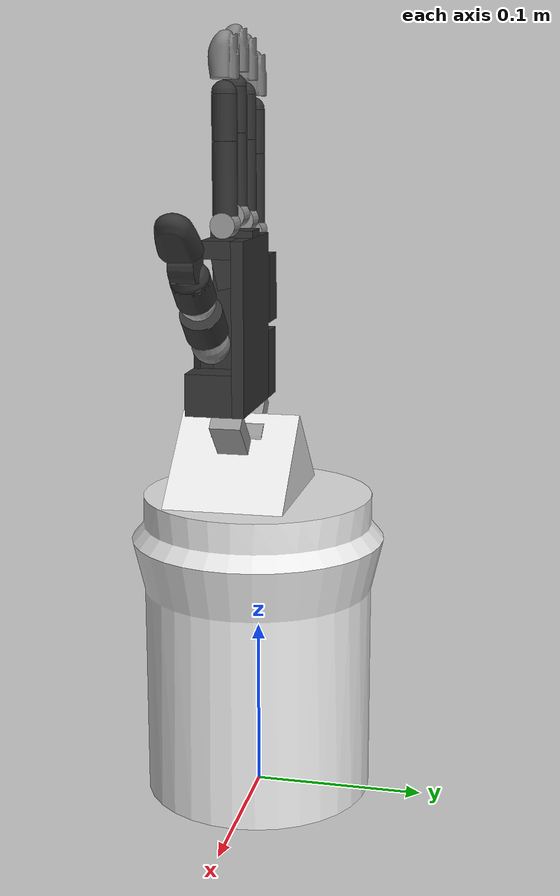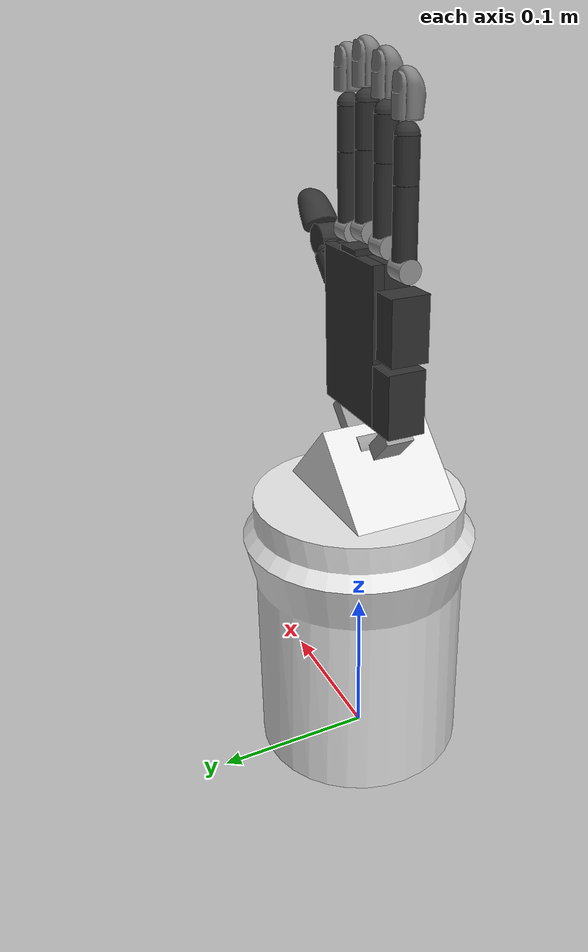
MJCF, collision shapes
<mujoco model="shadowhand_motor">
  <compiler angle="radian" meshdir="assets_sh_stl/"/>

  <option cone="elliptic" impratio="10"/>

  <default>
    <default class="right_hand">
      <mesh scale="0.001 0.001 0.001"/>
      <joint axis="1 0 0" damping="0.05" armature="0.0002" frictionloss="0.01"/>
      <position forcerange="-1 1"/>

      <default class="wrist">
        <joint damping="0.5"/>
        <default class="wrist_y">
          <!-- updated values from https://shadow-robot-company-dexterous-hand.readthedocs-hosted.com/en/latest/user_guide/md_ranges.html -->
          <joint axis="0 1 0" range="-0.489 0.174" />
          <position kp="10" ctrlrange="-0.523599 0.174533" forcerange="-10 10"/>
        </default>
        <default class="wrist_x">
          <joint range="-0.698132 0.488692"/>
          <position kp="8" ctrlrange="-0.698132 0.488692" forcerange="-5 5"/>
        </default>
      </default>

      <default class="thumb">
        <default class="thbase">
          <joint axis="0 0 -1" range="-1.0472 1.0472"/>
          <position kp="0.4" ctrlrange="-1.0472 1.0472" forcerange="-3 3"/>
        </default>
        <default class="thproximal">
          <joint range="0 1.22173"/>
          <position ctrlrange="0 1.22173" forcerange="-2 2"/>
        </default>
        <default class="thhub">
          <joint range="-0.20944 0.20944"/>
          <position kp="0.5" ctrlrange="-0.20944 0.20944"/>
        </default>
        <default class="thmiddle">
          <joint axis="0 -1 0" range="-0.698132 0.698132"/>
          <position kp="1.5" ctrlrange="-0.698132 0.698132"/>
        </default>
        <default class="thdistal">
          <joint range="-0.261799 1.5708"/>
          <position ctrlrange="-0.261799 1.5708"/>
        </default>
      </default>

      <default class="metacarpal">
        <joint axis="0.573576 0 0.819152" range="0 0.785398"/>
        <position ctrlrange="0 0.785398"/>
      </default>
      <default class="knuckle">
        <joint axis="0 -1 0" range="-0.349066 0.349066"/>
        <position ctrlrange="-0.349066 0.349066"/>
      </default>
      <default class="proximal">
        <joint range="-0.261799 1.5708"/>
        <position ctrlrange="-0.261799 1.5708"/>
      </default>
      <default class="middle_distal">
        <joint range="0 1.5708"/>
        <position kp="0.5" ctrlrange="0 3.1415"/>
      </default>

      <default class="plastic">
        <geom solimp="0.5 0.99 0.0001" solref="0.005 1"/>
        <default class="plastic_visual">
          <geom type="mesh" material="black" contype="0" conaffinity="0" group="2"/>
        </default>
        <default class="plastic_collision">
          <geom group="3"/>
        </default>
      </default>
    </default>
  </default>

  <asset>
    <mesh name="forearm_E3M5" file="forearm_E3M5.stl" scale="0.001 0.001 0.001"/>
    <mesh name="forearm_collision_E3M5" file="forearm_collision_E3M5.stl" scale="0.001 0.001 0.001"/>
    <mesh name="wrist_E3M5" file="wrist_E3M5.stl" scale="0.001 0.001 0.001"/>
    <mesh name="palm_E3M5" file="palm_E3M5.stl" scale="0.001 0.001 0.001"/>
    <mesh name="f_knuckle_E3M5" file="f_knuckle_E3M5.stl" scale="0.001 0.001 0.001"/>
    <mesh name="f_proximal_E3M5" file="f_proximal_E3M5.stl" scale="0.001 0.001 0.001"/>
    <mesh name="f_middle_E3M5" file="f_middle_E3M5.stl" scale="0.001 0.001 0.001"/>
    <mesh name="f_distal_mstXL" file="f_distal_mstXL.stl" scale="0.001 0.001 0.001"/>
    <mesh name="lf_metacarpal_E3M5" file="lf_metacarpal_E3M5.stl" scale="0.001 0.001 0.001"/>
    <mesh name="th_proximal_E3M5" file="th_proximal_E3M5.stl" scale="0.001 0.001 0.001"/>
    <mesh name="th_middle_E3M5" file="th_middle_E3M5.stl" scale="0.001 0.001 0.001"/>
    <mesh name="th_distal_mst" file="th_distal_mst.stl" scale="0.001 0.001 0.001"/>
  </asset>

  <worldbody>
    <geom type="mesh" contype="0" conaffinity="0" group="1" density="0" rgba="0.9 0.9 0.9 1" mesh="forearm_E3M5"/>
    <geom type="mesh" rgba="0.9 0.9 0.9 1" mesh="forearm_collision_E3M5"/>
    <geom size="0.035 0.035 0.035" pos="0 -0.01 0.181" quat="0.924909 0 0.380188 0" type="box" rgba="0.9 0.9 0.9 1"/>
    <body name="rh_wrist" pos="0 -0.01 0.21301">
      <inertial pos="0 0 0.029" quat="0.5 0.5 0.5 0.5" mass="0.1" diaginertia="6.4e-05 4.38e-05 3.5e-05"/>
      <joint name="rh_WRJ2" pos="0 0 0" axis="0 1 0" range="-0.523599 0.174533" actuatorfrcrange="-10 10" damping="0.1"/>
      <geom type="mesh" contype="0" conaffinity="0" group="1" density="0" rgba="0.6 0.6 0.6 1" mesh="wrist_E3M5"/>
      <geom size="0.0135 0.015" quat="0.499998 0.5 0.5 -0.500002" type="cylinder" rgba="0.6 0.6 0.6 1"/>
      <geom size="0.011 0.005" pos="-0.026 0 0.034" quat="0.707105 0 0.707108 0" type="cylinder" rgba="0.6 0.6 0.6 1"/>
      <geom size="0.011 0.005" pos="0.031 0 0.034" quat="0.707105 0 0.707108 0" type="cylinder" rgba="0.6 0.6 0.6 1"/>
      <geom size="0.0135 0.009 0.005" pos="-0.021 0 0.011" quat="0.923879 0 0.382684 0" type="box" rgba="0.6 0.6 0.6 1"/>
      <geom size="0.0135 0.009 0.005" pos="0.026 0 0.01" quat="0.923879 0 -0.382684 0" type="box" rgba="0.6 0.6 0.6 1"/>
      <body name="rh_palm" pos="0 0 0.034">
        <inertial pos="0 0 0.035" quat="0.707107 0 0 0.707107" mass="0.3" diaginertia="0.0005287 0.0003581 0.000191"/>
        <joint name="rh_WRJ1" pos="0 0 0" axis="1 0 0" range="-0.698132 0.488692" actuatorfrcrange="-30 30" damping="0.1"/>
        <geom type="mesh" contype="0" conaffinity="0" group="1" density="0" rgba="0.2 0.2 0.2 1" mesh="palm_E3M5"/>
        <geom size="0.031 0.0035 0.049" pos="0.011 0.0085 0.038" type="box" rgba="0.2 0.2 0.2 1"/>
        <geom size="0.018 0.0085 0.049" pos="-0.002 -0.0035 0.038" type="box" rgba="0.2 0.2 0.2 1"/>
        <geom size="0.013 0.0085 0.005" pos="0.029 -0.0035 0.082" type="box" rgba="0.2 0.2 0.2 1"/>
        <geom size="0.013 0.007 0.009" pos="0.0265 -0.001 0.07" quat="0.987241 0.0990545 0.0124467 0.124052" type="box" rgba="0.2 0.2 0.2 1"/>
        <geom size="0.0105 0.0135 0.012" pos="0.0315 -0.0085 0.001" type="box" rgba="0.2 0.2 0.2 1"/>
        <geom size="0.011 0.0025 0.02" pos="0.0125 -0.015 0.009" quat="0.971338 0 0 -0.237703" type="box" rgba="0.2 0.2 0.2 1"/>
        <geom size="0.009 0.012 0.002" pos="0.011 0 0.089" type="box" rgba="0.2 0.2 0.2 1"/>
        <geom size="0.01 0.012 0.02" pos="-0.03 0 0.009" type="box" rgba="0.2 0.2 0.2 1"/>
        <body name="rh_ffknuckle" pos="0.033 0 0.095">
          <inertial pos="0 0 0" quat="0.5 0.5 -0.5 0.5" mass="0.008" diaginertia="3.2e-07 2.6e-07 2.6e-07"/>
          <joint name="rh_FFJ4" pos="0 0 0" axis="0 -1 0" range="-0.349066 0.349066" actuatorfrcrange="-2 2" damping="0.1"/>
          <geom pos="0 0 0.0005" quat="1 0 0 0" type="mesh" contype="0" conaffinity="0" group="1" density="0" rgba="0.6 0.6 0.6 1" mesh="f_knuckle_E3M5"/>
          <geom size="0.007 0.007" quat="0.707105 0 0.707108 0" type="cylinder" rgba="0.6 0.6 0.6 1"/>
          <body name="rh_ffproximal">
            <inertial pos="0 0 0.0225" quat="0.707107 0 0 0.707107" mass="0.03" diaginertia="1e-05 9.8e-06 1.8e-06"/>
            <joint name="rh_FFJ3" pos="0 0 0" axis="1 0 0" range="-0.261799 1.5708" actuatorfrcrange="-2 2" damping="0.1"/>
            <geom type="mesh" contype="0" conaffinity="0" group="1" density="0" rgba="0.2 0.2 0.2 1" mesh="f_proximal_E3M5"/>
            <geom size="0.007 0.02" pos="0 0 0.025" type="cylinder" rgba="0.2 0.2 0.2 1"/>
            <body name="rh_ffmiddle" pos="0 0 0.045">
              <inertial pos="0 0 0.0125" quat="0.707107 0 0 0.707107" mass="0.017" diaginertia="2.7e-06 2.6e-06 8.7e-07"/>
              <joint name="rh_FFJ2" pos="0 0 0" axis="1 0 0" range="0 1.5708" actuatorfrcrange="-2 2" damping="0.1"/>
              <geom type="mesh" contype="0" conaffinity="0" group="1" density="0" rgba="0.2 0.2 0.2 1" mesh="f_middle_E3M5"/>
              <geom size="0.007 0.0125" pos="0 0 0.0125" type="cylinder" rgba="0.2 0.2 0.2 1"/>
              <geom size="0.007" rgba="0.2 0.2 0.2 1"/>
              <geom size="0.007" pos="0 0 0.025" rgba="0.2 0.2 0.2 1"/>
              <body name="rh_ffdistal" pos="0 0 0.025">
                <inertial pos="0 0 0.0130769" quat="0.707107 0 0 0.707107" mass="0.013" diaginertia="1.28092e-06 1.12092e-06 5.3e-07"/>
                <joint name="rh_FFJ1" pos="0 0 0" axis="1 0 0" range="0 1.5708" actuatorfrcrange="-2 2" damping="0.1"/>
                <geom type="mesh" contype="0" conaffinity="0" group="1" density="0" mesh="f_distal_mstXL"/>
                <geom type="mesh" mesh="f_distal_mstXL"/>
              </body>
            </body>
          </body>
        </body>
        <body name="rh_mfknuckle" pos="0.011 0 0.099">
          <inertial pos="0 0 0" quat="0.5 0.5 -0.5 0.5" mass="0.008" diaginertia="3.2e-07 2.6e-07 2.6e-07"/>
          <joint name="rh_MFJ4" pos="0 0 0" axis="0 -1 0" range="-0.349066 0.349066" actuatorfrcrange="-2 2" damping="0.1"/>
          <geom pos="0 0 0.0005" quat="1 0 0 0" type="mesh" contype="0" conaffinity="0" group="1" density="0" rgba="0.6 0.6 0.6 1" mesh="f_knuckle_E3M5"/>
          <geom size="0.007 0.007" quat="0.707105 0 0.707108 0" type="cylinder" rgba="0.6 0.6 0.6 1"/>
          <body name="rh_mfproximal">
            <inertial pos="0 0 0.0225" quat="0.707107 0 0 0.707107" mass="0.03" diaginertia="1e-05 9.8e-06 1.8e-06"/>
            <joint name="rh_MFJ3" pos="0 0 0" axis="1 0 0" range="-0.261799 1.5708" actuatorfrcrange="-2 2" damping="0.1"/>
            <geom type="mesh" contype="0" conaffinity="0" group="1" density="0" rgba="0.2 0.2 0.2 1" mesh="f_proximal_E3M5"/>
            <geom size="0.007 0.02" pos="0 0 0.025" type="cylinder" rgba="0.2 0.2 0.2 1"/>
            <body name="rh_mfmiddle" pos="0 0 0.045">
              <inertial pos="0 0 0.0125" quat="0.707107 0 0 0.707107" mass="0.017" diaginertia="2.7e-06 2.6e-06 8.7e-07"/>
              <joint name="rh_MFJ2" pos="0 0 0" axis="1 0 0" range="0 1.5708" actuatorfrcrange="-2 2" damping="0.1"/>
              <geom type="mesh" contype="0" conaffinity="0" group="1" density="0" rgba="0.2 0.2 0.2 1" mesh="f_middle_E3M5"/>
              <geom size="0.007 0.0125" pos="0 0 0.0125" type="cylinder" rgba="0.2 0.2 0.2 1"/>
              <geom size="0.007" rgba="0.2 0.2 0.2 1"/>
              <geom size="0.007" pos="0 0 0.025" rgba="0.2 0.2 0.2 1"/>
              <body name="rh_mfdistal" pos="0 0 0.025">
                <inertial pos="0 0 0.0130769" quat="0.707107 0 0 0.707107" mass="0.013"
                  diaginertia="1.28092e-06 1.12092e-06 5.3e-07" />
                <joint name="rh_MFJ1" pos="0 0 0" axis="1 0 0" range="0 1.5708"
                  actuatorfrcrange="-2 2" damping="0.1" />
                <geom type="mesh" contype="0" conaffinity="0" group="1" density="0"
                  mesh="f_distal_mstXL" />
                <geom type="mesh" mesh="f_distal_mstXL" />
              </body>
            </body>
          </body>
        </body>
        <body name="rh_rfknuckle" pos="-0.011 0 0.095">
          <inertial pos="0 0 0" quat="0.5 0.5 -0.5 0.5" mass="0.008" diaginertia="3.2e-07 2.6e-07 2.6e-07"/>
          <joint name="rh_RFJ4" pos="0 0 0" axis="0 1 0" range="-0.349066 0.349066" actuatorfrcrange="-2 2" damping="0.1"/>
          <geom pos="0 0 0.0005" quat="1 0 0 0" type="mesh" contype="0" conaffinity="0" group="1" density="0" rgba="0.6 0.6 0.6 1" mesh="f_knuckle_E3M5"/>
          <geom size="0.007 0.007" quat="0.707105 0 0.707108 0" type="cylinder" rgba="0.6 0.6 0.6 1"/>
          <body name="rh_rfproximal">
            <inertial pos="0 0 0.0225" quat="0.707107 0 0 0.707107" mass="0.03" diaginertia="1e-05 9.8e-06 1.8e-06"/>
            <joint name="rh_RFJ3" pos="0 0 0" axis="1 0 0" range="-0.261799 1.5708" actuatorfrcrange="-2 2" damping="0.1"/>
            <geom type="mesh" contype="0" conaffinity="0" group="1" density="0" rgba="0.2 0.2 0.2 1" mesh="f_proximal_E3M5"/>
            <geom size="0.007 0.02" pos="0 0 0.025" type="cylinder" rgba="0.2 0.2 0.2 1"/>
            <body name="rh_rfmiddle" pos="0 0 0.045">
              <inertial pos="0 0 0.0125" quat="0.707107 0 0 0.707107" mass="0.017" diaginertia="2.7e-06 2.6e-06 8.7e-07"/>
              <joint name="rh_RFJ2" pos="0 0 0" axis="1 0 0" range="0 1.5708" actuatorfrcrange="-2 2" damping="0.1"/>
              <geom type="mesh" contype="0" conaffinity="0" group="1" density="0" rgba="0.2 0.2 0.2 1" mesh="f_middle_E3M5"/>
              <geom size="0.007 0.0125" pos="0 0 0.0125" type="cylinder" rgba="0.2 0.2 0.2 1"/>
              <geom size="0.007" rgba="0.2 0.2 0.2 1"/>
              <geom size="0.007" pos="0 0 0.025" rgba="0.2 0.2 0.2 1"/>
              <body name="rh_rfdistal" pos="0 0 0.025">
                <inertial pos="0 0 0.0130769" quat="0.707107 0 0 0.707107" mass="0.013" diaginertia="1.28092e-06 1.12092e-06 5.3e-07"/>
                <joint name="rh_RFJ1" pos="0 0 0" axis="1 0 0" range="0 1.5708" actuatorfrcrange="-2 2" damping="0.1"/>
                <geom type="mesh" contype="0" conaffinity="0" group="1" density="0" mesh="f_distal_mstXL"/>
                <geom type="mesh" mesh="f_distal_mstXL"/>
              </body>
            </body>
          </body>
        </body>
        <body name="rh_lfmetacarpal" pos="-0.033 0 0.02071" quat="0.887018 0 -0.461735 0">
          <inertial pos="0.0317487 0 0.0223529" quat="0.707107 0 0 0.707107" mass="0.03" diaginertia="1.638e-05 1.45e-05 4.272e-06"/>
          <joint name="rh_LFJ5" pos="0 0 0" axis="1 0 0" range="0 0.785398" actuatorfrcrange="-2 2" damping="0.1"/>
          <geom quat="0.887018 0 0.461735 0" type="mesh" contype="0" conaffinity="0" group="1" density="0" rgba="0.2 0.2 0.2 1" mesh="lf_metacarpal_E3M5"/>
          <geom size="0.009 0.012 0.02" pos="0.0269864 0 0.019" quat="0.887018 0 0.461735 0" type="box" rgba="0.2 0.2 0.2 1"/>
          <body name="rh_lfknuckle" pos="0.0539727 0 0.0377946" quat="0.887018 0 0.461735 0">
            <inertial pos="0 0 0" quat="0.5 0.5 -0.5 0.5" mass="0.008" diaginertia="3.2e-07 2.6e-07 2.6e-07"/>
            <joint name="rh_LFJ4" pos="0 0 0" axis="0 1 0" range="-0.349066 0.349066" actuatorfrcrange="-2 2" damping="0.1"/>
            <geom pos="0 0 0.0005" quat="1 0 0 0" type="mesh" contype="0" conaffinity="0" group="1" density="0" rgba="0.6 0.6 0.6 1" mesh="f_knuckle_E3M5"/>
            <geom size="0.007 0.007" quat="0.707105 0 0.707108 0" type="cylinder" rgba="0.6 0.6 0.6 1"/>
            <body name="rh_lfproximal">
              <inertial pos="0 0 0.0225" quat="0.707107 0 0 0.707107" mass="0.03" diaginertia="1e-05 9.8e-06 1.8e-06"/>
              <joint name="rh_LFJ3" pos="0 0 0" axis="1 0 0" range="-0.261799 1.5708" actuatorfrcrange="-2 2" damping="0.1"/>
              <geom type="mesh" contype="0" conaffinity="0" group="1" density="0" rgba="0.2 0.2 0.2 1" mesh="f_proximal_E3M5"/>
              <geom size="0.007 0.02" pos="0 0 0.025" type="cylinder" rgba="0.2 0.2 0.2 1"/>
              <body name="rh_lfmiddle" pos="0 0 0.045">
                <inertial pos="0 0 0.0125" quat="0.707107 0 0 0.707107" mass="0.017" diaginertia="2.7e-06 2.6e-06 8.7e-07"/>
                <joint name="rh_LFJ2" pos="0 0 0" axis="1 0 0" range="0 1.5708" actuatorfrcrange="-2 2" damping="0.1"/>
                <geom type="mesh" contype="0" conaffinity="0" group="1" density="0" rgba="0.2 0.2 0.2 1" mesh="f_middle_E3M5"/>
                <geom size="0.007 0.0125" pos="0 0 0.0125" type="cylinder" rgba="0.2 0.2 0.2 1"/>
                <geom size="0.007" rgba="0.2 0.2 0.2 1"/>
                <geom size="0.007" pos="0 0 0.025" rgba="0.2 0.2 0.2 1"/>
                <body name="rh_lfdistal" pos="0 0 0.025">
                  <inertial pos="0 0 0.0130769" quat="0.707107 0 0 0.707107" mass="0.013" diaginertia="1.28092e-06 1.12092e-06 5.3e-07"/>
                  <joint name="rh_LFJ1" pos="0 0 0" axis="1 0 0" range="0 1.5708" actuatorfrcrange="-2 2" damping="0.1"/>
                  <geom type="mesh" contype="0" conaffinity="0" group="1" density="0" mesh="f_distal_mstXL"/>
                  <geom type="mesh" mesh="f_distal_mstXL"/>
                </body>
              </body>
            </body>
          </body>
        </body>
        <body name="rh_thbase" pos="0.034 -0.00858 0.029" quat="0.653281 -0.270598 0.270598 -0.653281">
          <inertial pos="0 0 0" mass="0.01" diaginertia="1.6e-07 1.6e-07 1.6e-07"/>
          <joint name="rh_THJ5" pos="0 0 0" axis="0 0 -1" range="-1.0472 1.0472" actuatorfrcrange="-5 5" damping="0.2"/>
          <geom size="0.0005 0.0005 0.0005" type="box" contype="0" conaffinity="0" group="1" density="0"/>
          <geom size="0.011"/>
          <body name="rh_thproximal">
            <inertial pos="0 0 0.019" mass="0.04" diaginertia="1.36e-05 1.36e-05 3.13e-06"/>
            <joint name="rh_THJ4" pos="0 0 0" axis="0 1 0" range="0 1.22173" actuatorfrcrange="-3 3" damping="0.2"/>
            <geom quat="0.707107 0 0 0.707107" type="mesh" contype="0" conaffinity="0" group="1" density="0" rgba="0.2 0.2 0.2 1" mesh="th_proximal_E3M5"/>
            <geom size="0.012 0.009" pos="0 0 0.02" type="cylinder" rgba="0.2 0.2 0.2 1"/>
            <body name="rh_thhub" pos="0 0 0.038">
              <inertial pos="0 0 0" mass="0.005" diaginertia="1e-06 1e-06 3e-07"/>
              <joint name="rh_THJ3" pos="0 0 0" axis="0 1 0" range="-0.20944 0.20944" actuatorfrcrange="-2 2" damping="0.2"/>
              <geom size="0.0005 0.0005 0.0005" type="box" contype="0" conaffinity="0" group="1" density="0" rgba="0.7 0.7 0.7 1"/>
              <geom size="0.01" rgba="0.7 0.7 0.7 1"/>
              <body name="rh_thmiddle">
                <inertial pos="0 0 0.016" mass="0.02" diaginertia="5.1e-06 5.1e-06 1.21e-06"/>
                <joint name="rh_THJ2" pos="0 0 0" axis="1 0 0" range="-0.698132 0.698132" actuatorfrcrange="-2 2" damping="0.1"/>
                <geom quat="0.707107 0 0 0.707107" type="mesh" contype="0" conaffinity="0" group="1" density="0" rgba="0.2 0.2 0.2 1" mesh="th_middle_E3M5"/>
                <geom size="0.011 0.009" pos="0 0 0.012" type="cylinder" rgba="0.2 0.2 0.2 1"/>
                <geom size="0.011" pos="0 0 0.019" rgba="0.2 0.2 0.2 1"/>
                <geom size="0.01 0.007" pos="0 0 0.032" quat="0.707105 0 0.707108 0" type="cylinder" rgba="0.2 0.2 0.2 1"/>
                <body name="rh_thdistal" pos="0 0 0.032">
                  <inertial pos="0 0 0.0145588" quat="0.707107 0 0 0.707107" mass="0.017" diaginertia="2.37794e-06 2.27794e-06 1e-06"/>
                  <joint name="rh_THJ1" pos="0 0 0" axis="1 0 0" range="-0.261799 1.5708" actuatorfrcrange="-1 1" damping="0.2"/>
                  <geom type="mesh" contype="0" conaffinity="0" group="1" density="0" rgba="0.2 0.2 0.2 1" mesh="th_distal_mst"/>
                  <geom type="mesh" rgba="0.2 0.2 0.2 1" mesh="th_distal_mst"/>
                </body>
              </body>
            </body>
          </body>
        </body>
      </body>
    </body>
  </worldbody>

  <actuator>
    <position name="rh_A_WRJ2" joint="rh_WRJ2" class="wrist_y" />

    <position name="rh_A_WRJ1" joint="rh_WRJ1" class="wrist_x" />

    <position name="rh_A_THJ5" joint="rh_THJ5" class="thbase" />
    <position name="rh_A_THJ4" joint="rh_THJ4" class="thproximal" />
    <position name="rh_A_THJ3" joint="rh_THJ3" class="thhub" />
    <position name="rh_A_THJ2" joint="rh_THJ2" class="thdistal" />
    <position name="rh_A_THJ1" joint="rh_THJ1" class="thdistal" />

    <position name="rh_A_FFJ4" joint="rh_FFJ4" class="knuckle" />
    <position name="rh_A_FFJ3" joint="rh_FFJ3" class="proximal" />
    <position name="rh_A_FFJ2" joint="rh_FFJ2" class="thdistal" />
    <position name="rh_A_FFJ1" joint="rh_FFJ1" class="thdistal" />

    <position name="rh_A_MFJ4" joint="rh_MFJ4" class="knuckle" />
    <position name="rh_A_MFJ3" joint="rh_MFJ3" class="proximal" />
    <position name="rh_A_MFJ2" joint="rh_MFJ2" class="thdistal" />
    <position name="rh_A_MFJ1" joint="rh_MFJ1" class="thdistal" />

    <position name="rh_A_RFJ4" joint="rh_RFJ4" class="knuckle" />
    <position name="rh_A_RFJ3" joint="rh_RFJ3" class="proximal" />
    <position name="rh_A_RFJ2" joint="rh_RFJ2" class="thdistal" />
    <position name="rh_A_RFJ1" joint="rh_RFJ1" class="thdistal" />

    <position name="rh_A_LFJ5" joint="rh_LFJ5" class="metacarpal" />
    <position name="rh_A_LFJ4" joint="rh_LFJ4" class="knuckle" />
    <position name="rh_A_LFJ3" joint="rh_LFJ3" class="proximal" />
    <position name="rh_A_LFJ2" joint="rh_LFJ2" class="thdistal" />
    <position name="rh_A_LFJ1" joint="rh_LFJ1" class="thdistal" />
  </actuator>

</mujoco>
